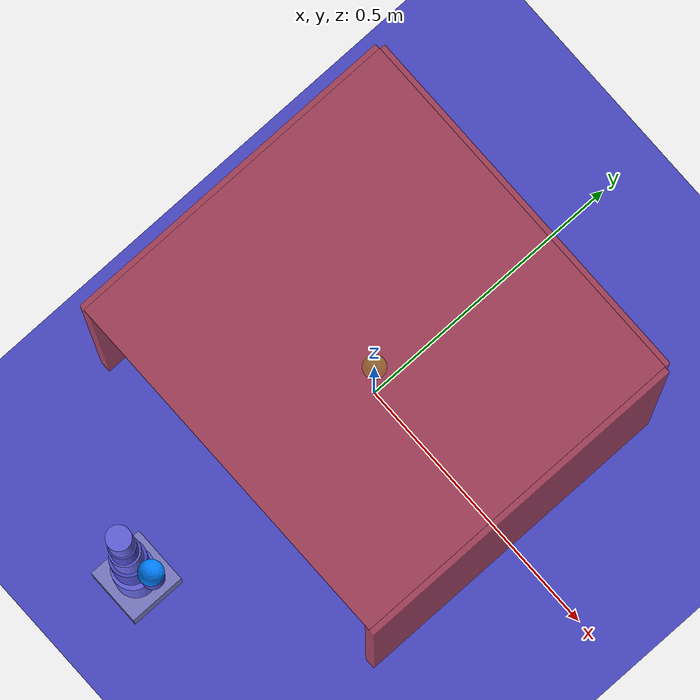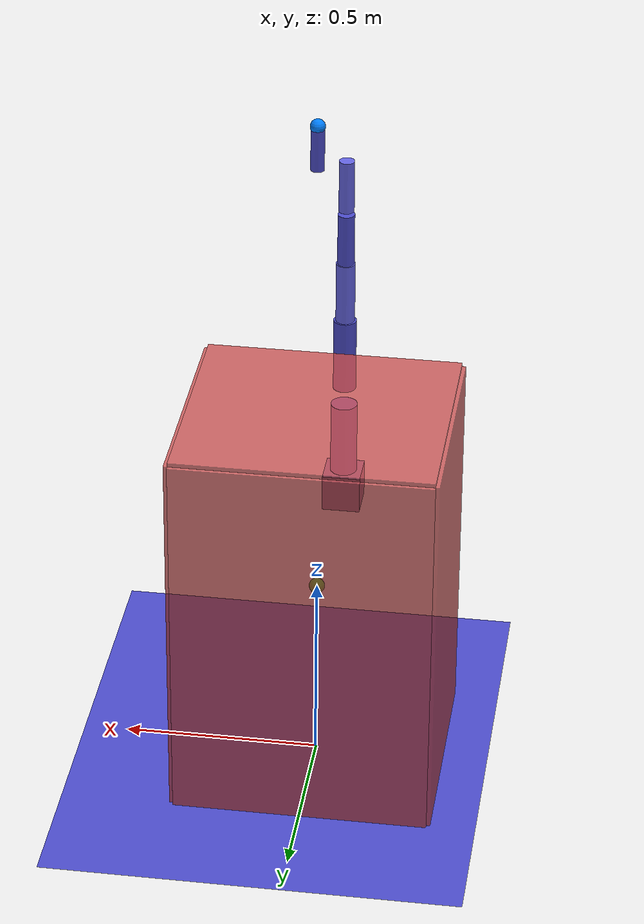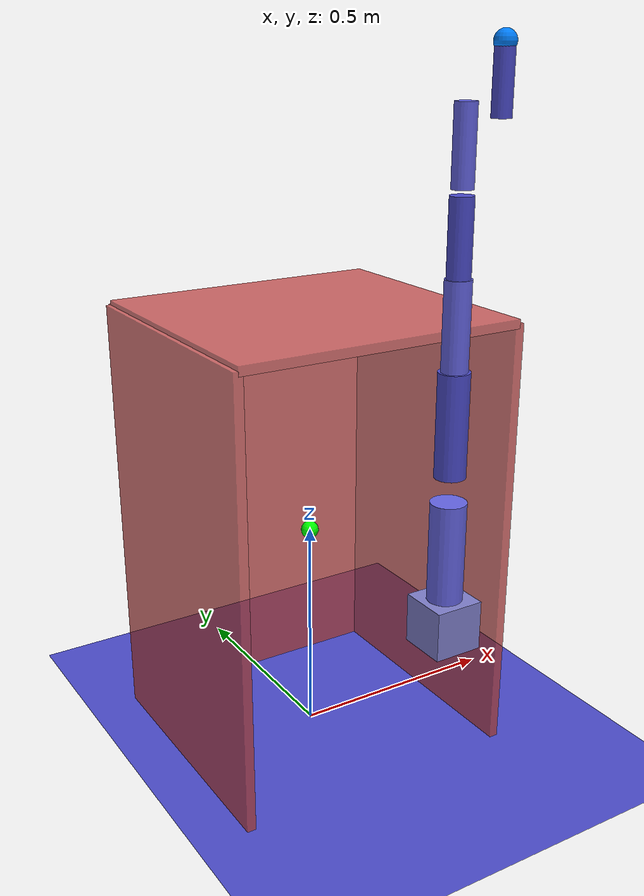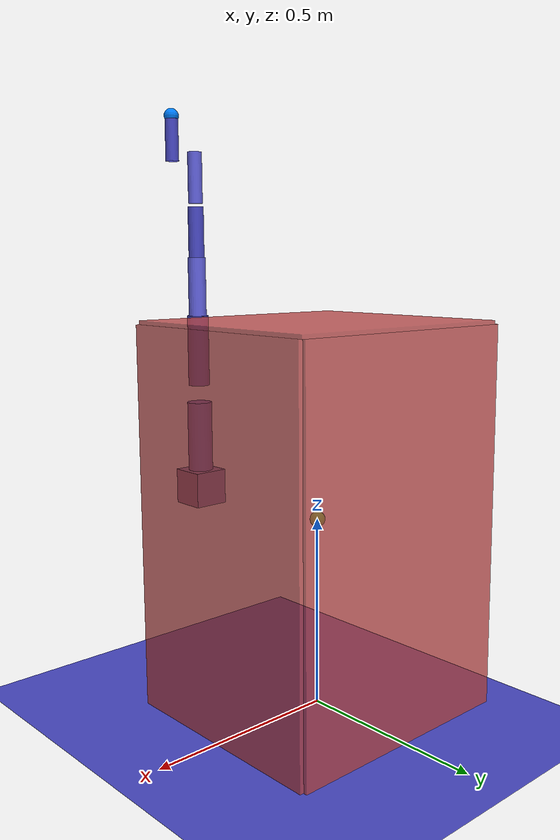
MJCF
<mujoco model="dtt_tokamak">
  <include file="vessel.xml"/>
  <compiler inertiafromgeom="true"/>
  <option timestep="0.0005" gravity="0 0 -9.81"/>

  <worldbody>
    <!-- DTT arm base mounted at port entry -->
    <!-- Sized for 650x600mm port from Calvo et al. -->
    <body name="base" pos="0 -0.5 0.5">
      <geom type="box" size="0.05 0.05 0.05" rgba="0.5 0.5 0.8 1"/>

      <!-- Link 1: d=300mm from Calvo DH table -->
      <body name="link1" pos="0 0 0.1">
        <joint name="j1" type="hinge" axis="0 0 1" range="-3.14 3.14"/>
        <geom type="cylinder" size="0.035 0.15" rgba="0.4 0.4 0.9 1"/>

        <!-- Link 2: d=0, a=0 -->
        <body name="link2" pos="0 0 0.30">
          <joint name="j2" type="hinge" axis="0 1 0" range="-1.57 1.57"/>
          <geom type="cylinder" size="0.030 0.10" rgba="0.3 0.3 0.8 1"/>

          <!-- Link 3: d=175mm from Calvo DH table -->
          <body name="link3" pos="0 0 0.175">
            <joint name="j3" type="hinge" axis="0 1 0" range="-3.14 3.14"/>
            <geom type="cylinder" size="0.025 0.09" rgba="0.4 0.4 0.9 1"/>

            <!-- Link 4: d=0 -->
            <body name="link4" pos="0 0 0.15">
              <joint name="j4" type="hinge" axis="0 1 0" range="-1.57 1.57"/>
              <geom type="cylinder" size="0.022 0.08" rgba="0.3 0.3 0.8 1"/>

              <!-- Link 5: d=160mm from Calvo DH table -->
              <body name="link5" pos="0 0 0.160">
                <joint name="j5" type="hinge" axis="0 0 1" range="-3.14 3.14"/>
                <geom type="cylinder" size="0.020 0.07" rgba="0.4 0.4 0.9 1"/>

                <!-- Link 6: a=75mm from Calvo DH table -->
                <body name="link6" pos="0.075 0 0.10">
                  <joint name="j6" type="hinge" axis="0 1 0" range="-3.14 3.14"/>
                  <geom type="cylinder" size="0.018 0.06" rgba="0.3 0.3 0.8 1"/>

                  <!-- End effector -->
                  <body name="ee_dtt" pos="0 0 0.06">
                    <geom type="sphere" size="0.02" rgba="0.0 0.5 1.0 1"/>
                    <site name="ee_site_dtt" pos="0 0 0"/>
                  </body>

                </body>
              </body>
            </body>
          </body>
        </body>
      </body>
    </body>
  </worldbody>

  <actuator>
    <velocity name="a1" joint="j1" kv="2"/>
    <velocity name="a2" joint="j2" kv="2"/>
    <velocity name="a3" joint="j3" kv="2"/>
    <velocity name="a4" joint="j4" kv="2"/>
    <velocity name="a5" joint="j5" kv="2"/>
    <velocity name="a6" joint="j6" kv="2"/>
  </actuator>

</mujoco>

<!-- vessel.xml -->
<mujoco model="tokamak_vessel">
  <option timestep="0.002" gravity="0 0 -9.81"/>

  <asset>
    <material name="vessel_mat" rgba="0.3 0.3 0.8 0.3"/>
    <material name="port_mat" rgba="0.8 0.3 0.3 0.8"/>
    <material name="target_mat" rgba="0.0 1.0 0.0 1.0"/>
  </asset>

  <worldbody>
    <!-- Vessel floor -->
    <geom name="floor" type="plane" size="5 5 0.1" pos="0 0 0" material="vessel_mat"/>

    <!-- Tokamak port walls (650x600mm = 0.65x0.60m) -->
    <!-- Left wall -->
    <geom name="port_left"  type="box" size="0.01 0.30 0.50" pos="-0.325 0 0.50" material="port_mat"/>
    <!-- Right wall -->
    <geom name="port_right" type="box" size="0.01 0.30 0.50" pos="0.325 0 0.50"  material="port_mat"/>
    <!-- Top wall -->
    <geom name="port_top"   type="box" size="0.325 0.30 0.01" pos="0 0 1.00"     material="port_mat"/>
    <!-- Back wall -->
    <geom name="port_back"  type="box" size="0.325 0.01 0.50" pos="0 0.30 0.50"  material="port_mat"/>

    <!-- Target marker (moved by code) -->
    <body name="target" pos="0 0 0.5">
      <geom name="target_geom" type="sphere" size="0.02" material="target_mat"/>
    </body>

  </worldbody>
</mujoco>
